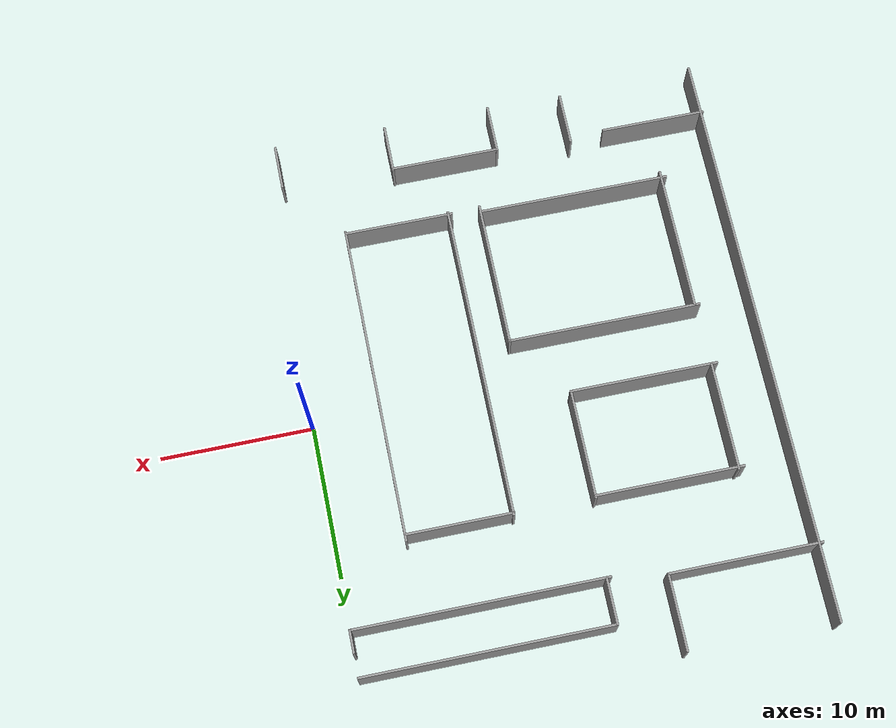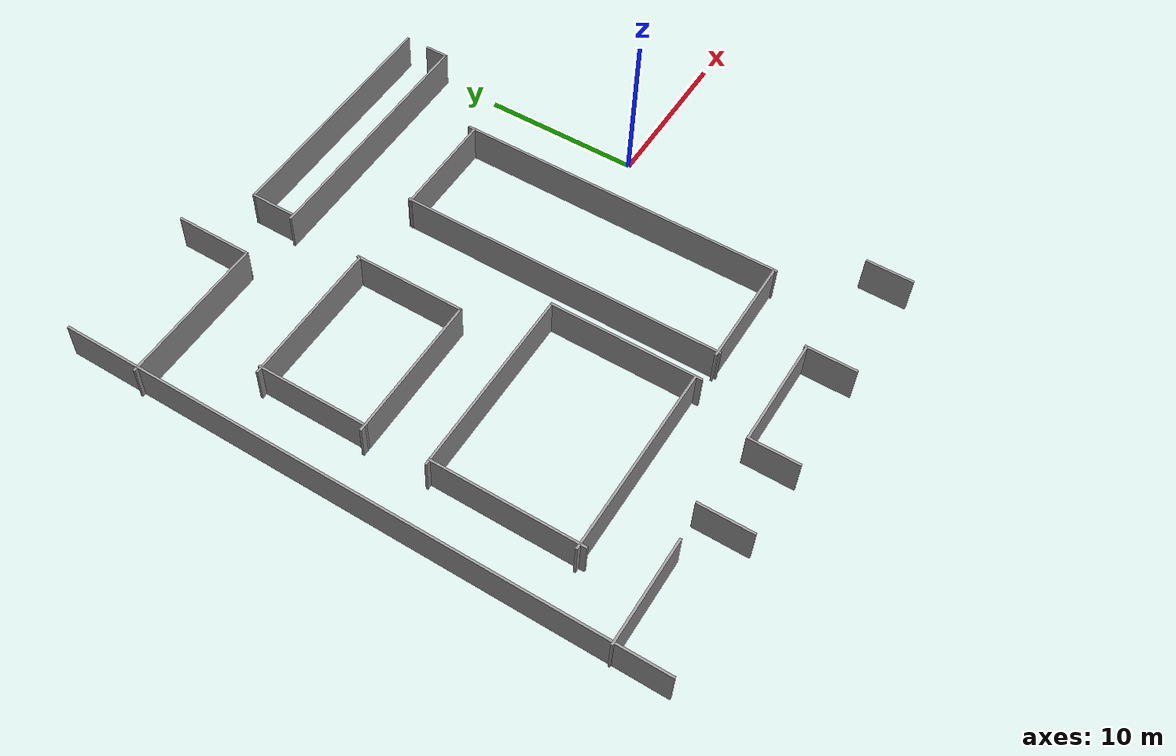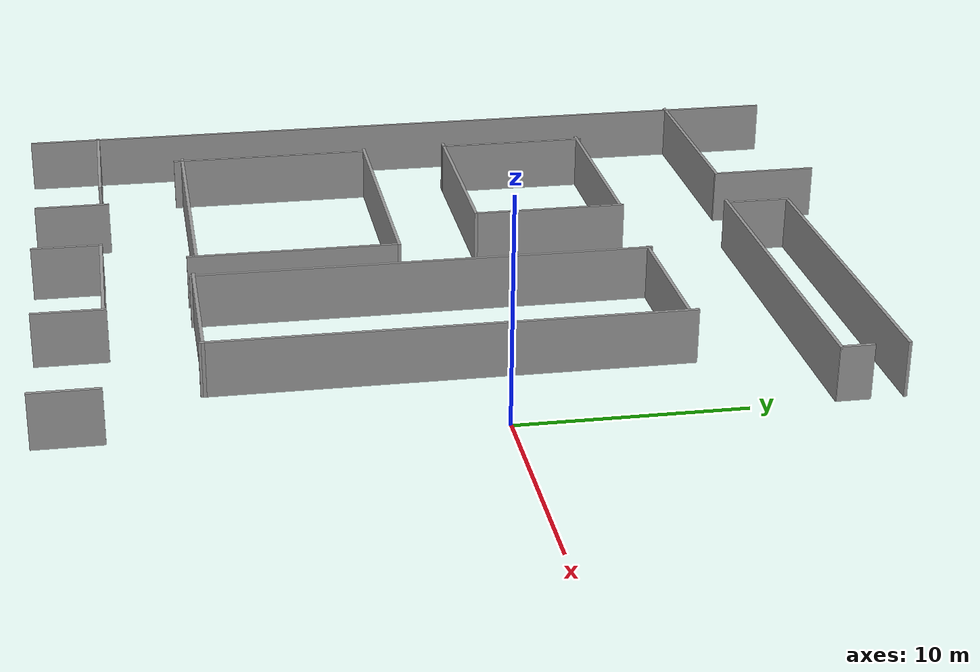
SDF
<sdf version="1.7">
 <model name="map_mir">
  <link name="Wall_29">
   <pose>-26.2691 -15.9562 0 0 -0 0</pose>
   <visual name="Wall_29_Visual">
    <pose>0 0 1.25 0 -0 0</pose>
    <geometry><box><size>7 0.15 2.5</size></box></geometry>
    <material>
     <script><uri>file://media/materials/scripts/gazebo.material</uri><name>Gazebo/Grey</name></script>
     <ambient>1 1 1 1</ambient>
     <shader type="pixel"/>
    </material>
    <meta><layer>0</layer></meta>
   </visual>
   <collision name="Wall_29_Collision">
    <pose>0 0 1.25 0 -0 0</pose>
    <geometry><box><size>7 0.15 2.5</size></box></geometry>
    <surface>
     <friction>
      <ode><mu>1</mu><mu2>1</mu2><fdir1>0 0 0</fdir1><slip1>0</slip1><slip2>0</slip2></ode>
      <torsional>
       <coefficient>1</coefficient>
       <patch_radius>0</patch_radius>
       <surface_radius>0</surface_radius>
       <use_patch_radius>1</use_patch_radius>
       <ode><slip>0</slip></ode>
      </torsional>
     </friction>
     <bounce><restitution_coefficient>0</restitution_coefficient><threshold>1e+06</threshold></bounce>
     <contact>
      <collide_without_contact>0</collide_without_contact>
      <collide_without_contact_bitmask>1</collide_without_contact_bitmask>
      <collide_bitmask>1</collide_bitmask>
      <ode>
       <soft_cfm>0</soft_cfm>
       <soft_erp>0.2</soft_erp>
       <kp>1e+13</kp>
       <kd>1</kd>
       <max_vel>0.01</max_vel>
       <min_depth>0</min_depth>
      </ode>
      <bullet>
       <split_impulse>1</split_impulse>
       <split_impulse_penetration_threshold>-0.01</split_impulse_penetration_threshold>
       <soft_cfm>0</soft_cfm>
       <soft_erp>0.2</soft_erp>
       <kp>1e+13</kp>
       <kd>1</kd>
      </bullet>
     </contact>
    </surface>
   </collision>
  </link>
  <link name="Wall_3">
   <pose>-29.5785 0.001041 0 0 -0 1.5708</pose>
   <visual name="Wall_3_Visual">
    <pose>0 0 1.25 0 -0 0</pose>
    <geometry><box><size>38.75 0.15 2.5</size></box></geometry>
    <material>
     <script><uri>file://media/materials/scripts/gazebo.material</uri><name>Gazebo/Grey</name></script>
     <ambient>1 1 1 1</ambient>
     <shader type="pixel"/>
    </material>
    <meta><layer>0</layer></meta>
   </visual>
   <collision name="Wall_3_Collision">
    <pose>0 0 1.25 0 -0 0</pose>
    <geometry><box><size>38.75 0.15 2.5</size></box></geometry>
    <surface>
     <friction>
      <ode><mu>1</mu><mu2>1</mu2><fdir1>0 0 0</fdir1><slip1>0</slip1><slip2>0</slip2></ode>
      <torsional>
       <coefficient>1</coefficient>
       <patch_radius>0</patch_radius>
       <surface_radius>0</surface_radius>
       <use_patch_radius>1</use_patch_radius>
       <ode><slip>0</slip></ode>
      </torsional>
     </friction>
     <bounce><restitution_coefficient>0</restitution_coefficient><threshold>1e+06</threshold></bounce>
     <contact>
      <collide_without_contact>0</collide_without_contact>
      <collide_without_contact_bitmask>1</collide_without_contact_bitmask>
      <collide_bitmask>1</collide_bitmask>
      <ode>
       <soft_cfm>0</soft_cfm>
       <soft_erp>0.2</soft_erp>
       <kp>1e+13</kp>
       <kd>1</kd>
       <max_vel>0.01</max_vel>
       <min_depth>0</min_depth>
      </ode>
      <bullet>
       <split_impulse>1</split_impulse>
       <split_impulse_penetration_threshold>-0.01</split_impulse_penetration_threshold>
       <soft_cfm>0</soft_cfm>
       <soft_erp>0.2</soft_erp>
       <kp>1e+13</kp>
       <kd>1</kd>
      </bullet>
     </contact>
    </surface>
   </collision>
  </link>
  <link name="Wall_31">
   <pose>-20.4909 -17.3227 0 0 0 -1.5708</pose>
   <visual name="Wall_31_Visual">
    <pose>0 0 1.25 0 -0 0</pose>
    <geometry><box><size>3.5 0.15 2.5</size></box></geometry>
    <material>
     <script><uri>file://media/materials/scripts/gazebo.material</uri><name>Gazebo/Grey</name></script>
     <ambient>1 1 1 1</ambient>
     <shader type="pixel"/>
    </material>
    <meta><layer>0</layer></meta>
   </visual>
   <collision name="Wall_31_Collision">
    <pose>0 0 1.25 0 -0 0</pose>
    <geometry><box><size>3.5 0.15 2.5</size></box></geometry>
    <surface>
     <friction>
      <ode><mu>1</mu><mu2>1</mu2><fdir1>0 0 0</fdir1><slip1>0</slip1><slip2>0</slip2></ode>
      <torsional>
       <coefficient>1</coefficient>
       <patch_radius>0</patch_radius>
       <surface_radius>0</surface_radius>
       <use_patch_radius>1</use_patch_radius>
       <ode><slip>0</slip></ode>
      </torsional>
     </friction>
     <bounce><restitution_coefficient>0</restitution_coefficient><threshold>1e+06</threshold></bounce>
     <contact>
      <collide_without_contact>0</collide_without_contact>
      <collide_without_contact_bitmask>1</collide_without_contact_bitmask>
      <collide_bitmask>1</collide_bitmask>
      <ode>
       <soft_cfm>0</soft_cfm>
       <soft_erp>0.2</soft_erp>
       <kp>1e+13</kp>
       <kd>1</kd>
       <max_vel>0.01</max_vel>
       <min_depth>0</min_depth>
      </ode>
      <bullet>
       <split_impulse>1</split_impulse>
       <split_impulse_penetration_threshold>-0.01</split_impulse_penetration_threshold>
       <soft_cfm>0</soft_cfm>
       <soft_erp>0.2</soft_erp>
       <kp>1e+13</kp>
       <kd>1</kd>
      </bullet>
     </contact>
    </surface>
   </collision>
  </link>
  <link name="Wall_34">
   <pose>-15.5189 -17.5724 0 0 -0 1.5708</pose>
   <visual name="Wall_34_Visual">
    <pose>0 0 1.25 0 -0 0</pose>
    <geometry><box><size>3.25 0.15 2.5</size></box></geometry>
    <material>
     <script><uri>file://media/materials/scripts/gazebo.material</uri><name>Gazebo/Grey</name></script>
     <ambient>1 1 1 1</ambient>
     <shader type="pixel"/>
    </material>
    <meta><layer>0</layer></meta>
   </visual>
   <collision name="Wall_34_Collision">
    <pose>0 0 1.25 0 -0 0</pose>
    <geometry><box><size>3.25 0.15 2.5</size></box></geometry>
    <surface>
     <friction>
      <ode><mu>1</mu><mu2>1</mu2><fdir1>0 0 0</fdir1><slip1>0</slip1><slip2>0</slip2></ode>
      <torsional>
       <coefficient>1</coefficient>
       <patch_radius>0</patch_radius>
       <surface_radius>0</surface_radius>
       <use_patch_radius>1</use_patch_radius>
       <ode><slip>0</slip></ode>
      </torsional>
     </friction>
     <bounce><restitution_coefficient>0</restitution_coefficient><threshold>1e+06</threshold></bounce>
     <contact>
      <collide_without_contact>0</collide_without_contact>
      <collide_without_contact_bitmask>1</collide_without_contact_bitmask>
      <collide_bitmask>1</collide_bitmask>
      <ode>
       <soft_cfm>0</soft_cfm>
       <soft_erp>0.2</soft_erp>
       <kp>1e+13</kp>
       <kd>1</kd>
       <max_vel>0.01</max_vel>
       <min_depth>0</min_depth>
      </ode>
      <bullet>
       <split_impulse>1</split_impulse>
       <split_impulse_penetration_threshold>-0.01</split_impulse_penetration_threshold>
       <soft_cfm>0</soft_cfm>
       <soft_erp>0.2</soft_erp>
       <kp>1e+13</kp>
       <kd>1</kd>
      </bullet>
     </contact>
    </surface>
   </collision>
  </link>
  <link name="Wall_35">
   <pose>-11.9689 -16.0335 0 0 -0 0</pose>
   <visual name="Wall_35_Visual">
    <pose>0 0 1.25 0 -0 0</pose>
    <geometry><box><size>7.25 0.15 2.5</size></box></geometry>
    <material>
     <script><uri>file://media/materials/scripts/gazebo.material</uri><name>Gazebo/Grey</name></script>
     <ambient>1 1 1 1</ambient>
     <shader type="pixel"/>
    </material>
    <meta><layer>0</layer></meta>
   </visual>
   <collision name="Wall_35_Collision">
    <pose>0 0 1.25 0 -0 0</pose>
    <geometry><box><size>7.25 0.15 2.5</size></box></geometry>
    <surface>
     <friction>
      <ode><mu>1</mu><mu2>1</mu2><fdir1>0 0 0</fdir1><slip1>0</slip1><slip2>0</slip2></ode>
      <torsional>
       <coefficient>1</coefficient>
       <patch_radius>0</patch_radius>
       <surface_radius>0</surface_radius>
       <use_patch_radius>1</use_patch_radius>
       <ode><slip>0</slip></ode>
      </torsional>
     </friction>
     <bounce><restitution_coefficient>0</restitution_coefficient><threshold>1e+06</threshold></bounce>
     <contact>
      <collide_without_contact>0</collide_without_contact>
      <collide_without_contact_bitmask>1</collide_without_contact_bitmask>
      <collide_bitmask>1</collide_bitmask>
      <ode>
       <soft_cfm>0</soft_cfm>
       <soft_erp>0.2</soft_erp>
       <kp>1e+13</kp>
       <kd>1</kd>
       <max_vel>0.01</max_vel>
       <min_depth>0</min_depth>
      </ode>
      <bullet>
       <split_impulse>1</split_impulse>
       <split_impulse_penetration_threshold>-0.01</split_impulse_penetration_threshold>
       <soft_cfm>0</soft_cfm>
       <soft_erp>0.2</soft_erp>
       <kp>1e+13</kp>
       <kd>1</kd>
      </bullet>
     </contact>
    </surface>
   </collision>
  </link>
  <link name="Wall_36">
   <pose>-8.41885 -17.5112 0 0 0 -1.5708</pose>
   <visual name="Wall_36_Visual">
    <pose>0 0 1.25 0 -0 0</pose>
    <geometry><box><size>3.25 0.15 2.5</size></box></geometry>
    <material>
     <script><uri>file://media/materials/scripts/gazebo.material</uri><name>Gazebo/Grey</name></script>
     <ambient>1 1 1 1</ambient>
     <shader type="pixel"/>
    </material>
    <meta><layer>0</layer></meta>
   </visual>
   <collision name="Wall_36_Collision">
    <pose>0 0 1.25 0 -0 0</pose>
    <geometry><box><size>3.25 0.15 2.5</size></box></geometry>
    <surface>
     <friction>
      <ode><mu>1</mu><mu2>1</mu2><fdir1>0 0 0</fdir1><slip1>0</slip1><slip2>0</slip2></ode>
      <torsional>
       <coefficient>1</coefficient>
       <patch_radius>0</patch_radius>
       <surface_radius>0</surface_radius>
       <use_patch_radius>1</use_patch_radius>
       <ode><slip>0</slip></ode>
      </torsional>
     </friction>
     <bounce><restitution_coefficient>0</restitution_coefficient><threshold>1e+06</threshold></bounce>
     <contact>
      <collide_without_contact>0</collide_without_contact>
      <collide_without_contact_bitmask>1</collide_without_contact_bitmask>
      <collide_bitmask>1</collide_bitmask>
      <ode>
       <soft_cfm>0</soft_cfm>
       <soft_erp>0.2</soft_erp>
       <kp>1e+13</kp>
       <kd>1</kd>
       <max_vel>0.01</max_vel>
       <min_depth>0</min_depth>
      </ode>
      <bullet>
       <split_impulse>1</split_impulse>
       <split_impulse_penetration_threshold>-0.01</split_impulse_penetration_threshold>
       <soft_cfm>0</soft_cfm>
       <soft_erp>0.2</soft_erp>
       <kp>1e+13</kp>
       <kd>1</kd>
      </bullet>
     </contact>
    </surface>
   </collision>
  </link>
  <link name="Wall_38">
   <pose>-0.962038 -17.6768 0 0 -0 1.5708</pose>
   <visual name="Wall_38_Visual">
    <pose>0 0 1.25 0 -0 0</pose>
    <geometry><box><size>3 0.15 2.5</size></box></geometry>
    <material>
     <script><uri>file://media/materials/scripts/gazebo.material</uri><name>Gazebo/Grey</name></script>
     <ambient>1 1 1 1</ambient>
     <shader type="pixel"/>
    </material>
    <meta><layer>0</layer></meta>
   </visual>
   <collision name="Wall_38_Collision">
    <pose>0 0 1.25 0 -0 0</pose>
    <geometry><box><size>3 0.15 2.5</size></box></geometry>
    <surface>
     <friction>
      <ode><mu>1</mu><mu2>1</mu2><fdir1>0 0 0</fdir1><slip1>0</slip1><slip2>0</slip2></ode>
      <torsional>
       <coefficient>1</coefficient>
       <patch_radius>0</patch_radius>
       <surface_radius>0</surface_radius>
       <use_patch_radius>1</use_patch_radius>
       <ode><slip>0</slip></ode>
      </torsional>
     </friction>
     <bounce><restitution_coefficient>0</restitution_coefficient><threshold>1e+06</threshold></bounce>
     <contact>
      <collide_without_contact>0</collide_without_contact>
      <collide_without_contact_bitmask>1</collide_without_contact_bitmask>
      <collide_bitmask>1</collide_bitmask>
      <ode>
       <soft_cfm>0</soft_cfm>
       <soft_erp>0.2</soft_erp>
       <kp>1e+13</kp>
       <kd>1</kd>
       <max_vel>0.01</max_vel>
       <min_depth>0</min_depth>
      </ode>
      <bullet>
       <split_impulse>1</split_impulse>
       <split_impulse_penetration_threshold>-0.01</split_impulse_penetration_threshold>
       <soft_cfm>0</soft_cfm>
       <soft_erp>0.2</soft_erp>
       <kp>1e+13</kp>
       <kd>1</kd>
      </bullet>
     </contact>
    </surface>
   </collision>
  </link>
  <link name="Wall_61">
   <pose>-4.49862 -1.60853 0 0 0 -1.5708</pose>
   <visual name="Wall_61_Visual">
    <pose>0 0 1.25 0 -0 0</pose>
    <geometry><box><size>21.25 0.15 2.5</size></box></geometry>
    <material>
     <script><uri>file://media/materials/scripts/gazebo.material</uri><name>Gazebo/Grey</name></script>
     <ambient>1 1 1 1</ambient>
     <shader type="pixel"/>
    </material>
    <meta><layer>0</layer></meta>
   </visual>
   <collision name="Wall_61_Collision">
    <pose>0 0 1.25 0 -0 0</pose>
    <geometry><box><size>21.25 0.15 2.5</size></box></geometry>
    <surface>
     <friction>
      <ode><mu>1</mu><mu2>1</mu2><fdir1>0 0 0</fdir1><slip1>0</slip1><slip2>0</slip2></ode>
      <torsional>
       <coefficient>1</coefficient>
       <patch_radius>0</patch_radius>
       <surface_radius>0</surface_radius>
       <use_patch_radius>1</use_patch_radius>
       <ode><slip>0</slip></ode>
      </torsional>
     </friction>
     <bounce><restitution_coefficient>0</restitution_coefficient><threshold>1e+06</threshold></bounce>
     <contact>
      <collide_without_contact>0</collide_without_contact>
      <collide_without_contact_bitmask>1</collide_without_contact_bitmask>
      <collide_bitmask>1</collide_bitmask>
      <ode>
       <soft_cfm>0</soft_cfm>
       <soft_erp>0.2</soft_erp>
       <kp>1e+13</kp>
       <kd>1</kd>
       <max_vel>0.01</max_vel>
       <min_depth>0</min_depth>
      </ode>
      <bullet>
       <split_impulse>1</split_impulse>
       <split_impulse_penetration_threshold>-0.01</split_impulse_penetration_threshold>
       <soft_cfm>0</soft_cfm>
       <soft_erp>0.2</soft_erp>
       <kp>1e+13</kp>
       <kd>1</kd>
      </bullet>
     </contact>
    </surface>
   </collision>
  </link>
  <link name="Wall_62">
   <pose>-8.04862 -12.0508 0 0 -0 3.14159</pose>
   <visual name="Wall_62_Visual">
    <pose>0 0 1.25 0 -0 0</pose>
    <geometry><box><size>7.25 0.15 2.5</size></box></geometry>
    <material>
     <script><uri>file://media/materials/scripts/gazebo.material</uri><name>Gazebo/Grey</name></script>
     <ambient>1 1 1 1</ambient>
     <shader type="pixel"/>
    </material>
    <meta><layer>0</layer></meta>
   </visual>
   <collision name="Wall_62_Collision">
    <pose>0 0 1.25 0 -0 0</pose>
    <geometry><box><size>7.25 0.15 2.5</size></box></geometry>
    <surface>
     <friction>
      <ode><mu>1</mu><mu2>1</mu2><fdir1>0 0 0</fdir1><slip1>0</slip1><slip2>0</slip2></ode>
      <torsional>
       <coefficient>1</coefficient>
       <patch_radius>0</patch_radius>
       <surface_radius>0</surface_radius>
       <use_patch_radius>1</use_patch_radius>
       <ode><slip>0</slip></ode>
      </torsional>
     </friction>
     <bounce><restitution_coefficient>0</restitution_coefficient><threshold>1e+06</threshold></bounce>
     <contact>
      <collide_without_contact>0</collide_without_contact>
      <collide_without_contact_bitmask>1</collide_without_contact_bitmask>
      <collide_bitmask>1</collide_bitmask>
      <ode>
       <soft_cfm>0</soft_cfm>
       <soft_erp>0.2</soft_erp>
       <kp>1e+13</kp>
       <kd>1</kd>
       <max_vel>0.01</max_vel>
       <min_depth>0</min_depth>
      </ode>
      <bullet>
       <split_impulse>1</split_impulse>
       <split_impulse_penetration_threshold>-0.01</split_impulse_penetration_threshold>
       <soft_cfm>0</soft_cfm>
       <soft_erp>0.2</soft_erp>
       <kp>1e+13</kp>
       <kd>1</kd>
      </bullet>
     </contact>
    </surface>
   </collision>
  </link>
  <link name="Wall_63">
   <pose>-11.3901 -1.73353 0 0 -0 1.5708</pose>
   <visual name="Wall_63_Visual">
    <pose>0 0 1.25 0 -0 0</pose>
    <geometry><box><size>21 0.15 2.5</size></box></geometry>
    <material>
     <script><uri>file://media/materials/scripts/gazebo.material</uri><name>Gazebo/Grey</name></script>
     <ambient>1 1 1 1</ambient>
     <shader type="pixel"/>
    </material>
    <meta><layer>0</layer></meta>
   </visual>
   <collision name="Wall_63_Collision">
    <pose>0 0 1.25 0 -0 0</pose>
    <geometry><box><size>21 0.15 2.5</size></box></geometry>
    <surface>
     <friction>
      <ode><mu>1</mu><mu2>1</mu2><fdir1>0 0 0</fdir1><slip1>0</slip1><slip2>0</slip2></ode>
      <torsional>
       <coefficient>1</coefficient>
       <patch_radius>0</patch_radius>
       <surface_radius>0</surface_radius>
       <use_patch_radius>1</use_patch_radius>
       <ode><slip>0</slip></ode>
      </torsional>
     </friction>
     <bounce><restitution_coefficient>0</restitution_coefficient><threshold>1e+06</threshold></bounce>
     <contact>
      <collide_without_contact>0</collide_without_contact>
      <collide_without_contact_bitmask>1</collide_without_contact_bitmask>
      <collide_bitmask>1</collide_bitmask>
      <ode>
       <soft_cfm>0</soft_cfm>
       <soft_erp>0.2</soft_erp>
       <kp>1e+13</kp>
       <kd>1</kd>
       <max_vel>0.01</max_vel>
       <min_depth>0</min_depth>
      </ode>
      <bullet>
       <split_impulse>1</split_impulse>
       <split_impulse_penetration_threshold>-0.01</split_impulse_penetration_threshold>
       <soft_cfm>0</soft_cfm>
       <soft_erp>0.2</soft_erp>
       <kp>1e+13</kp>
       <kd>1</kd>
      </bullet>
     </contact>
    </surface>
   </collision>
  </link>
  <link name="Wall_64">
   <pose>-7.99831 8.57963 0 0 -0 0</pose>
   <visual name="Wall_64_Visual">
    <pose>0 0 1.25 0 -0 0</pose>
    <geometry><box><size>7 0.15 2.5</size></box></geometry>
    <material>
     <script><uri>file://media/materials/scripts/gazebo.material</uri><name>Gazebo/Grey</name></script>
     <ambient>1 1 1 1</ambient>
     <shader type="pixel"/>
    </material>
    <meta><layer>0</layer></meta>
   </visual>
   <collision name="Wall_64_Collision">
    <pose>0 0 1.25 0 -0 0</pose>
    <geometry><box><size>7 0.15 2.5</size></box></geometry>
    <surface>
     <friction>
      <ode><mu>1</mu><mu2>1</mu2><fdir1>0 0 0</fdir1><slip1>0</slip1><slip2>0</slip2></ode>
      <torsional>
       <coefficient>1</coefficient>
       <patch_radius>0</patch_radius>
       <surface_radius>0</surface_radius>
       <use_patch_radius>1</use_patch_radius>
       <ode><slip>0</slip></ode>
      </torsional>
     </friction>
     <bounce><restitution_coefficient>0</restitution_coefficient><threshold>1e+06</threshold></bounce>
     <contact>
      <collide_without_contact>0</collide_without_contact>
      <collide_without_contact_bitmask>1</collide_without_contact_bitmask>
      <collide_bitmask>1</collide_bitmask>
      <ode>
       <soft_cfm>0</soft_cfm>
       <soft_erp>0.2</soft_erp>
       <kp>1e+13</kp>
       <kd>1</kd>
       <max_vel>0.01</max_vel>
       <min_depth>0</min_depth>
      </ode>
      <bullet>
       <split_impulse>1</split_impulse>
       <split_impulse_penetration_threshold>-0.01</split_impulse_penetration_threshold>
       <soft_cfm>0</soft_cfm>
       <soft_erp>0.2</soft_erp>
       <kp>1e+13</kp>
       <kd>1</kd>
      </bullet>
     </contact>
    </surface>
   </collision>
  </link>
  <link name="Wall_66">
   <pose>-21.4538 8.55207 0 0 -0 0</pose>
   <visual name="Wall_66_Visual">
    <pose>0 0 1.25 0 -0 0</pose>
    <geometry><box><size>9.75 0.15 2.5</size></box></geometry>
    <material>
     <script><uri>file://media/materials/scripts/gazebo.material</uri><name>Gazebo/Grey</name></script>
     <ambient>1 1 1 1</ambient>
     <shader type="pixel"/>
    </material>
    <meta><layer>0</layer></meta>
   </visual>
   <collision name="Wall_66_Collision">
    <pose>0 0 1.25 0 -0 0</pose>
    <geometry><box><size>9.75 0.15 2.5</size></box></geometry>
    <surface>
     <friction>
      <ode><mu>1</mu><mu2>1</mu2><fdir1>0 0 0</fdir1><slip1>0</slip1><slip2>0</slip2></ode>
      <torsional>
       <coefficient>1</coefficient>
       <patch_radius>0</patch_radius>
       <surface_radius>0</surface_radius>
       <use_patch_radius>1</use_patch_radius>
       <ode><slip>0</slip></ode>
      </torsional>
     </friction>
     <bounce><restitution_coefficient>0</restitution_coefficient><threshold>1e+06</threshold></bounce>
     <contact>
      <collide_without_contact>0</collide_without_contact>
      <collide_without_contact_bitmask>1</collide_without_contact_bitmask>
      <collide_bitmask>1</collide_bitmask>
      <ode>
       <soft_cfm>0</soft_cfm>
       <soft_erp>0.2</soft_erp>
       <kp>1e+13</kp>
       <kd>1</kd>
       <max_vel>0.01</max_vel>
       <min_depth>0</min_depth>
      </ode>
      <bullet>
       <split_impulse>1</split_impulse>
       <split_impulse_penetration_threshold>-0.01</split_impulse_penetration_threshold>
       <soft_cfm>0</soft_cfm>
       <soft_erp>0.2</soft_erp>
       <kp>1e+13</kp>
       <kd>1</kd>
      </bullet>
     </contact>
    </surface>
   </collision>
  </link>
  <link name="Wall_67">
   <pose>-16.6538 5.11626 0 0 0 -1.5708</pose>
   <visual name="Wall_67_Visual">
    <pose>0 0 1.25 0 -0 0</pose>
    <geometry><box><size>7.25 0.15 2.5</size></box></geometry>
    <material>
     <script><uri>file://media/materials/scripts/gazebo.material</uri><name>Gazebo/Grey</name></script>
     <ambient>1 1 1 1</ambient>
     <shader type="pixel"/>
    </material>
    <meta><layer>0</layer></meta>
   </visual>
   <collision name="Wall_67_Collision">
    <pose>0 0 1.25 0 -0 0</pose>
    <geometry><box><size>7.25 0.15 2.5</size></box></geometry>
    <surface>
     <friction>
      <ode><mu>1</mu><mu2>1</mu2><fdir1>0 0 0</fdir1><slip1>0</slip1><slip2>0</slip2></ode>
      <torsional>
       <coefficient>1</coefficient>
       <patch_radius>0</patch_radius>
       <surface_radius>0</surface_radius>
       <use_patch_radius>1</use_patch_radius>
       <ode><slip>0</slip></ode>
      </torsional>
     </friction>
     <bounce><restitution_coefficient>0</restitution_coefficient><threshold>1e+06</threshold></bounce>
     <contact>
      <collide_without_contact>0</collide_without_contact>
      <collide_without_contact_bitmask>1</collide_without_contact_bitmask>
      <collide_bitmask>1</collide_bitmask>
      <ode>
       <soft_cfm>0</soft_cfm>
       <soft_erp>0.2</soft_erp>
       <kp>1e+13</kp>
       <kd>1</kd>
       <max_vel>0.01</max_vel>
       <min_depth>0</min_depth>
      </ode>
      <bullet>
       <split_impulse>1</split_impulse>
       <split_impulse_penetration_threshold>-0.01</split_impulse_penetration_threshold>
       <soft_cfm>0</soft_cfm>
       <soft_erp>0.2</soft_erp>
       <kp>1e+13</kp>
       <kd>1</kd>
      </bullet>
     </contact>
    </surface>
   </collision>
  </link>
  <link name="Wall_68">
   <pose>-21.4538 1.56626 0 0 -0 3.14159</pose>
   <visual name="Wall_68_Visual">
    <pose>0 0 1.25 0 -0 0</pose>
    <geometry><box><size>9.75 0.15 2.5</size></box></geometry>
    <material>
     <script><uri>file://media/materials/scripts/gazebo.material</uri><name>Gazebo/Grey</name></script>
     <ambient>1 1 1 1</ambient>
     <shader type="pixel"/>
    </material>
    <meta><layer>0</layer></meta>
   </visual>
   <collision name="Wall_68_Collision">
    <pose>0 0 1.25 0 -0 0</pose>
    <geometry><box><size>9.75 0.15 2.5</size></box></geometry>
    <surface>
     <friction>
      <ode><mu>1</mu><mu2>1</mu2><fdir1>0 0 0</fdir1><slip1>0</slip1><slip2>0</slip2></ode>
      <torsional>
       <coefficient>1</coefficient>
       <patch_radius>0</patch_radius>
       <surface_radius>0</surface_radius>
       <use_patch_radius>1</use_patch_radius>
       <ode><slip>0</slip></ode>
      </torsional>
     </friction>
     <bounce><restitution_coefficient>0</restitution_coefficient><threshold>1e+06</threshold></bounce>
     <contact>
      <collide_without_contact>0</collide_without_contact>
      <collide_without_contact_bitmask>1</collide_without_contact_bitmask>
      <collide_bitmask>1</collide_bitmask>
      <ode>
       <soft_cfm>0</soft_cfm>
       <soft_erp>0.2</soft_erp>
       <kp>1e+13</kp>
       <kd>1</kd>
       <max_vel>0.01</max_vel>
       <min_depth>0</min_depth>
      </ode>
      <bullet>
       <split_impulse>1</split_impulse>
       <split_impulse_penetration_threshold>-0.01</split_impulse_penetration_threshold>
       <soft_cfm>0</soft_cfm>
       <soft_erp>0.2</soft_erp>
       <kp>1e+13</kp>
       <kd>1</kd>
      </bullet>
     </contact>
    </surface>
   </collision>
  </link>
  <link name="Wall_69">
   <pose>-25.8989 5.11626 0 0 -0 1.5708</pose>
   <visual name="Wall_69_Visual">
    <pose>0 0 1.25 0 -0 0</pose>
    <geometry><box><size>7.25 0.15 2.5</size></box></geometry>
    <material>
     <script><uri>file://media/materials/scripts/gazebo.material</uri><name>Gazebo/Grey</name></script>
     <ambient>1 1 1 1</ambient>
     <shader type="pixel"/>
    </material>
    <meta><layer>0</layer></meta>
   </visual>
   <collision name="Wall_69_Collision">
    <pose>0 0 1.25 0 -0 0</pose>
    <geometry><box><size>7.25 0.15 2.5</size></box></geometry>
    <surface>
     <friction>
      <ode><mu>1</mu><mu2>1</mu2><fdir1>0 0 0</fdir1><slip1>0</slip1><slip2>0</slip2></ode>
      <torsional>
       <coefficient>1</coefficient>
       <patch_radius>0</patch_radius>
       <surface_radius>0</surface_radius>
       <use_patch_radius>1</use_patch_radius>
       <ode><slip>0</slip></ode>
      </torsional>
     </friction>
     <bounce><restitution_coefficient>0</restitution_coefficient><threshold>1e+06</threshold></bounce>
     <contact>
      <collide_without_contact>0</collide_without_contact>
      <collide_without_contact_bitmask>1</collide_without_contact_bitmask>
      <collide_bitmask>1</collide_bitmask>
      <ode>
       <soft_cfm>0</soft_cfm>
       <soft_erp>0.2</soft_erp>
       <kp>1e+13</kp>
       <kd>1</kd>
       <max_vel>0.01</max_vel>
       <min_depth>0</min_depth>
      </ode>
      <bullet>
       <split_impulse>1</split_impulse>
       <split_impulse_penetration_threshold>-0.01</split_impulse_penetration_threshold>
       <soft_cfm>0</soft_cfm>
       <soft_erp>0.2</soft_erp>
       <kp>1e+13</kp>
       <kd>1</kd>
      </bullet>
     </contact>
    </surface>
   </collision>
  </link>
  <link name="Wall_71">
   <pose>-24.8847 14.2808 0 0 -0 0</pose>
   <visual name="Wall_71_Visual">
    <pose>0 0 1.25 0 -0 0</pose>
    <geometry><box><size>10 0.15 2.5</size></box></geometry>
    <material>
     <script><uri>file://media/materials/scripts/gazebo.material</uri><name>Gazebo/Grey</name></script>
     <ambient>1 1 1 1</ambient>
     <shader type="pixel"/>
    </material>
    <meta><layer>0</layer></meta>
   </visual>
   <collision name="Wall_71_Collision">
    <pose>0 0 1.25 0 -0 0</pose>
    <geometry><box><size>10 0.15 2.5</size></box></geometry>
    <surface>
     <friction>
      <ode><mu>1</mu><mu2>1</mu2><fdir1>0 0 0</fdir1><slip1>0</slip1><slip2>0</slip2></ode>
      <torsional>
       <coefficient>1</coefficient>
       <patch_radius>0</patch_radius>
       <surface_radius>0</surface_radius>
       <use_patch_radius>1</use_patch_radius>
       <ode><slip>0</slip></ode>
      </torsional>
     </friction>
     <bounce><restitution_coefficient>0</restitution_coefficient><threshold>1e+06</threshold></bounce>
     <contact>
      <collide_without_contact>0</collide_without_contact>
      <collide_without_contact_bitmask>1</collide_without_contact_bitmask>
      <collide_bitmask>1</collide_bitmask>
      <ode>
       <soft_cfm>0</soft_cfm>
       <soft_erp>0.2</soft_erp>
       <kp>1e+13</kp>
       <kd>1</kd>
       <max_vel>0.01</max_vel>
       <min_depth>0</min_depth>
      </ode>
      <bullet>
       <split_impulse>1</split_impulse>
       <split_impulse_penetration_threshold>-0.01</split_impulse_penetration_threshold>
       <soft_cfm>0</soft_cfm>
       <soft_erp>0.2</soft_erp>
       <kp>1e+13</kp>
       <kd>1</kd>
      </bullet>
     </contact>
    </surface>
   </collision>
  </link>
  <link name="Wall_72">
   <pose>-19.9597 16.7058 0 0 -0 1.5708</pose>
   <visual name="Wall_72_Visual">
    <pose>0 0 1.25 0 -0 0</pose>
    <geometry><box><size>5 0.15 2.5</size></box></geometry>
    <material>
     <script><uri>file://media/materials/scripts/gazebo.material</uri><name>Gazebo/Grey</name></script>
     <ambient>1 1 1 1</ambient>
     <shader type="pixel"/>
    </material>
    <meta><layer>0</layer></meta>
   </visual>
   <collision name="Wall_72_Collision">
    <pose>0 0 1.25 0 -0 0</pose>
    <geometry><box><size>5 0.15 2.5</size></box></geometry>
    <surface>
     <friction>
      <ode><mu>1</mu><mu2>1</mu2><fdir1>0 0 0</fdir1><slip1>0</slip1><slip2>0</slip2></ode>
      <torsional>
       <coefficient>1</coefficient>
       <patch_radius>0</patch_radius>
       <surface_radius>0</surface_radius>
       <use_patch_radius>1</use_patch_radius>
       <ode><slip>0</slip></ode>
      </torsional>
     </friction>
     <bounce><restitution_coefficient>0</restitution_coefficient><threshold>1e+06</threshold></bounce>
     <contact>
      <collide_without_contact>0</collide_without_contact>
      <collide_without_contact_bitmask>1</collide_without_contact_bitmask>
      <collide_bitmask>1</collide_bitmask>
      <ode>
       <soft_cfm>0</soft_cfm>
       <soft_erp>0.2</soft_erp>
       <kp>1e+13</kp>
       <kd>1</kd>
       <max_vel>0.01</max_vel>
       <min_depth>0</min_depth>
      </ode>
      <bullet>
       <split_impulse>1</split_impulse>
       <split_impulse_penetration_threshold>-0.01</split_impulse_penetration_threshold>
       <soft_cfm>0</soft_cfm>
       <soft_erp>0.2</soft_erp>
       <kp>1e+13</kp>
       <kd>1</kd>
      </bullet>
     </contact>
    </surface>
   </collision>
  </link>
  <link name="Wall_76">
   <pose>-8.24205 13.7364 0 0 -0 0</pose>
   <visual name="Wall_76_Visual">
    <pose>0 0 1.25 0 -0 0</pose>
    <geometry><box><size>16.5 0.15 2.5</size></box></geometry>
    <material>
     <script><uri>file://media/materials/scripts/gazebo.material</uri><name>Gazebo/Grey</name></script>
     <ambient>1 1 1 1</ambient>
     <shader type="pixel"/>
    </material>
    <meta><layer>0</layer></meta>
   </visual>
   <collision name="Wall_76_Collision">
    <pose>0 0 1.25 0 -0 0</pose>
    <geometry><box><size>16.5 0.15 2.5</size></box></geometry>
    <surface>
     <friction>
      <ode><mu>1</mu><mu2>1</mu2><fdir1>0 0 0</fdir1><slip1>0</slip1><slip2>0</slip2></ode>
      <torsional>
       <coefficient>1</coefficient>
       <patch_radius>0</patch_radius>
       <surface_radius>0</surface_radius>
       <use_patch_radius>1</use_patch_radius>
       <ode><slip>0</slip></ode>
      </torsional>
     </friction>
     <bounce><restitution_coefficient>0</restitution_coefficient><threshold>1e+06</threshold></bounce>
     <contact>
      <collide_without_contact>0</collide_without_contact>
      <collide_without_contact_bitmask>1</collide_without_contact_bitmask>
      <collide_bitmask>1</collide_bitmask>
      <ode>
       <soft_cfm>0</soft_cfm>
       <soft_erp>0.2</soft_erp>
       <kp>1e+13</kp>
       <kd>1</kd>
       <max_vel>0.01</max_vel>
       <min_depth>0</min_depth>
      </ode>
      <bullet>
       <split_impulse>1</split_impulse>
       <split_impulse_penetration_threshold>-0.01</split_impulse_penetration_threshold>
       <soft_cfm>0</soft_cfm>
       <soft_erp>0.2</soft_erp>
       <kp>1e+13</kp>
       <kd>1</kd>
      </bullet>
     </contact>
    </surface>
   </collision>
  </link>
  <link name="Wall_77">
   <pose>-0.067049 14.4469 0 0 -0 1.5708</pose>
   <visual name="Wall_77_Visual">
    <pose>0 0 1.25 0 -0 0</pose>
    <geometry><box><size>1.5 0.15 2.5</size></box></geometry>
    <material>
     <script><uri>file://media/materials/scripts/gazebo.material</uri><name>Gazebo/Grey</name></script>
     <ambient>1 1 1 1</ambient>
     <shader type="pixel"/>
    </material>
    <meta><layer>0</layer></meta>
   </visual>
   <collision name="Wall_77_Collision">
    <pose>0 0 1.25 0 -0 0</pose>
    <geometry><box><size>1.5 0.15 2.5</size></box></geometry>
    <surface>
     <friction>
      <ode><mu>1</mu><mu2>1</mu2><fdir1>0 0 0</fdir1><slip1>0</slip1><slip2>0</slip2></ode>
      <torsional>
       <coefficient>1</coefficient>
       <patch_radius>0</patch_radius>
       <surface_radius>0</surface_radius>
       <use_patch_radius>1</use_patch_radius>
       <ode><slip>0</slip></ode>
      </torsional>
     </friction>
     <bounce><restitution_coefficient>0</restitution_coefficient><threshold>1e+06</threshold></bounce>
     <contact>
      <collide_without_contact>0</collide_without_contact>
      <collide_without_contact_bitmask>1</collide_without_contact_bitmask>
      <collide_bitmask>1</collide_bitmask>
      <ode>
       <soft_cfm>0</soft_cfm>
       <soft_erp>0.2</soft_erp>
       <kp>1e+13</kp>
       <kd>1</kd>
       <max_vel>0.01</max_vel>
       <min_depth>0</min_depth>
      </ode>
      <bullet>
       <split_impulse>1</split_impulse>
       <split_impulse_penetration_threshold>-0.01</split_impulse_penetration_threshold>
       <soft_cfm>0</soft_cfm>
       <soft_erp>0.2</soft_erp>
       <kp>1e+13</kp>
       <kd>1</kd>
      </bullet>
     </contact>
    </surface>
   </collision>
  </link>
  <link name="Wall_79">
   <pose>-8.11705 16.6863 0 0 -0 3.14159</pose>
   <visual name="Wall_79_Visual">
    <pose>0 0 1.25 0 -0 0</pose>
    <geometry><box><size>16.25 0.15 2.5</size></box></geometry>
    <material>
     <script><uri>file://media/materials/scripts/gazebo.material</uri><name>Gazebo/Grey</name></script>
     <ambient>1 1 1 1</ambient>
     <shader type="pixel"/>
    </material>
    <meta><layer>0</layer></meta>
   </visual>
   <collision name="Wall_79_Collision">
    <pose>0 0 1.25 0 -0 0</pose>
    <geometry><box><size>16.25 0.15 2.5</size></box></geometry>
    <surface>
     <friction>
      <ode><mu>1</mu><mu2>1</mu2><fdir1>0 0 0</fdir1><slip1>0</slip1><slip2>0</slip2></ode>
      <torsional>
       <coefficient>1</coefficient>
       <patch_radius>0</patch_radius>
       <surface_radius>0</surface_radius>
       <use_patch_radius>1</use_patch_radius>
       <ode><slip>0</slip></ode>
      </torsional>
     </friction>
     <bounce><restitution_coefficient>0</restitution_coefficient><threshold>1e+06</threshold></bounce>
     <contact>
      <collide_without_contact>0</collide_without_contact>
      <collide_without_contact_bitmask>1</collide_without_contact_bitmask>
      <collide_bitmask>1</collide_bitmask>
      <ode>
       <soft_cfm>0</soft_cfm>
       <soft_erp>0.2</soft_erp>
       <kp>1e+13</kp>
       <kd>1</kd>
       <max_vel>0.01</max_vel>
       <min_depth>0</min_depth>
      </ode>
      <bullet>
       <split_impulse>1</split_impulse>
       <split_impulse_penetration_threshold>-0.01</split_impulse_penetration_threshold>
       <soft_cfm>0</soft_cfm>
       <soft_erp>0.2</soft_erp>
       <kp>1e+13</kp>
       <kd>1</kd>
      </bullet>
     </contact>
    </surface>
   </collision>
  </link>
  <link name="Wall_80">
   <pose>-16.167 15.2466 0 0 0 -1.5708</pose>
   <visual name="Wall_80_Visual">
    <pose>0 0 1.25 0 -0 0</pose>
    <geometry><box><size>3 0.15 2.5</size></box></geometry>
    <material>
     <script><uri>file://media/materials/scripts/gazebo.material</uri><name>Gazebo/Grey</name></script>
     <ambient>1 1 1 1</ambient>
     <shader type="pixel"/>
    </material>
    <meta><layer>0</layer></meta>
   </visual>
   <collision name="Wall_80_Collision">
    <pose>0 0 1.25 0 -0 0</pose>
    <geometry><box><size>3 0.15 2.5</size></box></geometry>
    <surface>
     <friction>
      <ode><mu>1</mu><mu2>1</mu2><fdir1>0 0 0</fdir1><slip1>0</slip1><slip2>0</slip2></ode>
      <torsional>
       <coefficient>1</coefficient>
       <patch_radius>0</patch_radius>
       <surface_radius>0</surface_radius>
       <use_patch_radius>1</use_patch_radius>
       <ode><slip>0</slip></ode>
      </torsional>
     </friction>
     <bounce><restitution_coefficient>0</restitution_coefficient><threshold>1e+06</threshold></bounce>
     <contact>
      <collide_without_contact>0</collide_without_contact>
      <collide_without_contact_bitmask>1</collide_without_contact_bitmask>
      <collide_bitmask>1</collide_bitmask>
      <ode>
       <soft_cfm>0</soft_cfm>
       <soft_erp>0.2</soft_erp>
       <kp>1e+13</kp>
       <kd>1</kd>
       <max_vel>0.01</max_vel>
       <min_depth>0</min_depth>
      </ode>
      <bullet>
       <split_impulse>1</split_impulse>
       <split_impulse_penetration_threshold>-0.01</split_impulse_penetration_threshold>
       <soft_cfm>0</soft_cfm>
       <soft_erp>0.2</soft_erp>
       <kp>1e+13</kp>
       <kd>1</kd>
      </bullet>
     </contact>
    </surface>
   </collision>
  </link>
  <link name="Wall_82">
   <pose>-25.8244 -7.36119 0 0 0 -1.5708</pose>
   <visual name="Wall_82_Visual">
    <pose>0 0 1.25 0 -0 0</pose>
    <geometry><box><size>9.75 0.15 2.5</size></box></geometry>
    <material>
     <script><uri>file://media/materials/scripts/gazebo.material</uri><name>Gazebo/Grey</name></script>
     <ambient>1 1 1 1</ambient>
     <shader type="pixel"/>
    </material>
    <meta><layer>0</layer></meta>
   </visual>
   <collision name="Wall_82_Collision">
    <pose>0 0 1.25 0 -0 0</pose>
    <geometry><box><size>9.75 0.15 2.5</size></box></geometry>
    <surface>
     <friction>
      <ode><mu>1</mu><mu2>1</mu2><fdir1>0 0 0</fdir1><slip1>0</slip1><slip2>0</slip2></ode>
      <torsional>
       <coefficient>1</coefficient>
       <patch_radius>0</patch_radius>
       <surface_radius>0</surface_radius>
       <use_patch_radius>1</use_patch_radius>
       <ode><slip>0</slip></ode>
      </torsional>
     </friction>
     <bounce><restitution_coefficient>0</restitution_coefficient><threshold>1e+06</threshold></bounce>
     <contact>
      <collide_without_contact>0</collide_without_contact>
      <collide_without_contact_bitmask>1</collide_without_contact_bitmask>
      <collide_bitmask>1</collide_bitmask>
      <ode>
       <soft_cfm>0</soft_cfm>
       <soft_erp>0.2</soft_erp>
       <kp>1e+13</kp>
       <kd>1</kd>
       <max_vel>0.01</max_vel>
       <min_depth>0</min_depth>
      </ode>
      <bullet>
       <split_impulse>1</split_impulse>
       <split_impulse_penetration_threshold>-0.01</split_impulse_penetration_threshold>
       <soft_cfm>0</soft_cfm>
       <soft_erp>0.2</soft_erp>
       <kp>1e+13</kp>
       <kd>1</kd>
      </bullet>
     </contact>
    </surface>
   </collision>
  </link>
  <link name="Wall_83">
   <pose>-19.8218 -11.805 0 0 -0 0</pose>
   <visual name="Wall_83_Visual">
    <pose>0 0 1.25 0 -0 0</pose>
    <geometry><box><size>12.75 0.15 2.5</size></box></geometry>
    <material>
     <script><uri>file://media/materials/scripts/gazebo.material</uri><name>Gazebo/Grey</name></script>
     <ambient>1 1 1 1</ambient>
     <shader type="pixel"/>
    </material>
    <meta><layer>0</layer></meta>
   </visual>
   <collision name="Wall_83_Collision">
    <pose>0 0 1.25 0 -0 0</pose>
    <geometry><box><size>12.75 0.15 2.5</size></box></geometry>
    <surface>
     <friction>
      <ode><mu>1</mu><mu2>1</mu2><fdir1>0 0 0</fdir1><slip1>0</slip1><slip2>0</slip2></ode>
      <torsional>
       <coefficient>1</coefficient>
       <patch_radius>0</patch_radius>
       <surface_radius>0</surface_radius>
       <use_patch_radius>1</use_patch_radius>
       <ode><slip>0</slip></ode>
      </torsional>
     </friction>
     <bounce><restitution_coefficient>0</restitution_coefficient><threshold>1e+06</threshold></bounce>
     <contact>
      <collide_without_contact>0</collide_without_contact>
      <collide_without_contact_bitmask>1</collide_without_contact_bitmask>
      <collide_bitmask>1</collide_bitmask>
      <ode>
       <soft_cfm>0</soft_cfm>
       <soft_erp>0.2</soft_erp>
       <kp>1e+13</kp>
       <kd>1</kd>
       <max_vel>0.01</max_vel>
       <min_depth>0</min_depth>
      </ode>
      <bullet>
       <split_impulse>1</split_impulse>
       <split_impulse_penetration_threshold>-0.01</split_impulse_penetration_threshold>
       <soft_cfm>0</soft_cfm>
       <soft_erp>0.2</soft_erp>
       <kp>1e+13</kp>
       <kd>1</kd>
      </bullet>
     </contact>
    </surface>
   </collision>
  </link>
  <link name="Wall_84">
   <pose>-13.5218 -7.36119 0 0 -0 1.5708</pose>
   <visual name="Wall_84_Visual">
    <pose>0 0 1.25 0 -0 0</pose>
    <geometry><box><size>9.75 0.15 2.5</size></box></geometry>
    <material>
     <script><uri>file://media/materials/scripts/gazebo.material</uri><name>Gazebo/Grey</name></script>
     <ambient>1 1 1 1</ambient>
     <shader type="pixel"/>
    </material>
    <meta><layer>0</layer></meta>
   </visual>
   <collision name="Wall_84_Collision">
    <pose>0 0 1.25 0 -0 0</pose>
    <geometry><box><size>9.75 0.15 2.5</size></box></geometry>
    <surface>
     <friction>
      <ode><mu>1</mu><mu2>1</mu2><fdir1>0 0 0</fdir1><slip1>0</slip1><slip2>0</slip2></ode>
      <torsional>
       <coefficient>1</coefficient>
       <patch_radius>0</patch_radius>
       <surface_radius>0</surface_radius>
       <use_patch_radius>1</use_patch_radius>
       <ode><slip>0</slip></ode>
      </torsional>
     </friction>
     <bounce><restitution_coefficient>0</restitution_coefficient><threshold>1e+06</threshold></bounce>
     <contact>
      <collide_without_contact>0</collide_without_contact>
      <collide_without_contact_bitmask>1</collide_without_contact_bitmask>
      <collide_bitmask>1</collide_bitmask>
      <ode>
       <soft_cfm>0</soft_cfm>
       <soft_erp>0.2</soft_erp>
       <kp>1e+13</kp>
       <kd>1</kd>
       <max_vel>0.01</max_vel>
       <min_depth>0</min_depth>
      </ode>
      <bullet>
       <split_impulse>1</split_impulse>
       <split_impulse_penetration_threshold>-0.01</split_impulse_penetration_threshold>
       <soft_cfm>0</soft_cfm>
       <soft_erp>0.2</soft_erp>
       <kp>1e+13</kp>
       <kd>1</kd>
      </bullet>
     </contact>
    </surface>
   </collision>
  </link>
  <link name="Wall_85">
   <pose>-19.8218 -2.56119 0 0 -0 3.14159</pose>
   <visual name="Wall_85_Visual">
    <pose>0 0 1.25 0 -0 0</pose>
    <geometry><box><size>12.75 0.15 2.5</size></box></geometry>
    <material>
     <script><uri>file://media/materials/scripts/gazebo.material</uri><name>Gazebo/Grey</name></script>
     <ambient>1 1 1 1</ambient>
     <shader type="pixel"/>
    </material>
    <meta><layer>0</layer></meta>
   </visual>
   <collision name="Wall_85_Collision">
    <pose>0 0 1.25 0 -0 0</pose>
    <geometry><box><size>12.75 0.15 2.5</size></box></geometry>
    <surface>
     <friction>
      <ode><mu>1</mu><mu2>1</mu2><fdir1>0 0 0</fdir1><slip1>0</slip1><slip2>0</slip2></ode>
      <torsional>
       <coefficient>1</coefficient>
       <patch_radius>0</patch_radius>
       <surface_radius>0</surface_radius>
       <use_patch_radius>1</use_patch_radius>
       <ode><slip>0</slip></ode>
      </torsional>
     </friction>
     <bounce><restitution_coefficient>0</restitution_coefficient><threshold>1e+06</threshold></bounce>
     <contact>
      <collide_without_contact>0</collide_without_contact>
      <collide_without_contact_bitmask>1</collide_without_contact_bitmask>
      <collide_bitmask>1</collide_bitmask>
      <ode>
       <soft_cfm>0</soft_cfm>
       <soft_erp>0.2</soft_erp>
       <kp>1e+13</kp>
       <kd>1</kd>
       <max_vel>0.01</max_vel>
       <min_depth>0</min_depth>
      </ode>
      <bullet>
       <split_impulse>1</split_impulse>
       <split_impulse_penetration_threshold>-0.01</split_impulse_penetration_threshold>
       <soft_cfm>0</soft_cfm>
       <soft_erp>0.2</soft_erp>
       <kp>1e+13</kp>
       <kd>1</kd>
      </bullet>
     </contact>
    </surface>
   </collision>
  </link>
  <static>1</static>
 </model>
</sdf>
